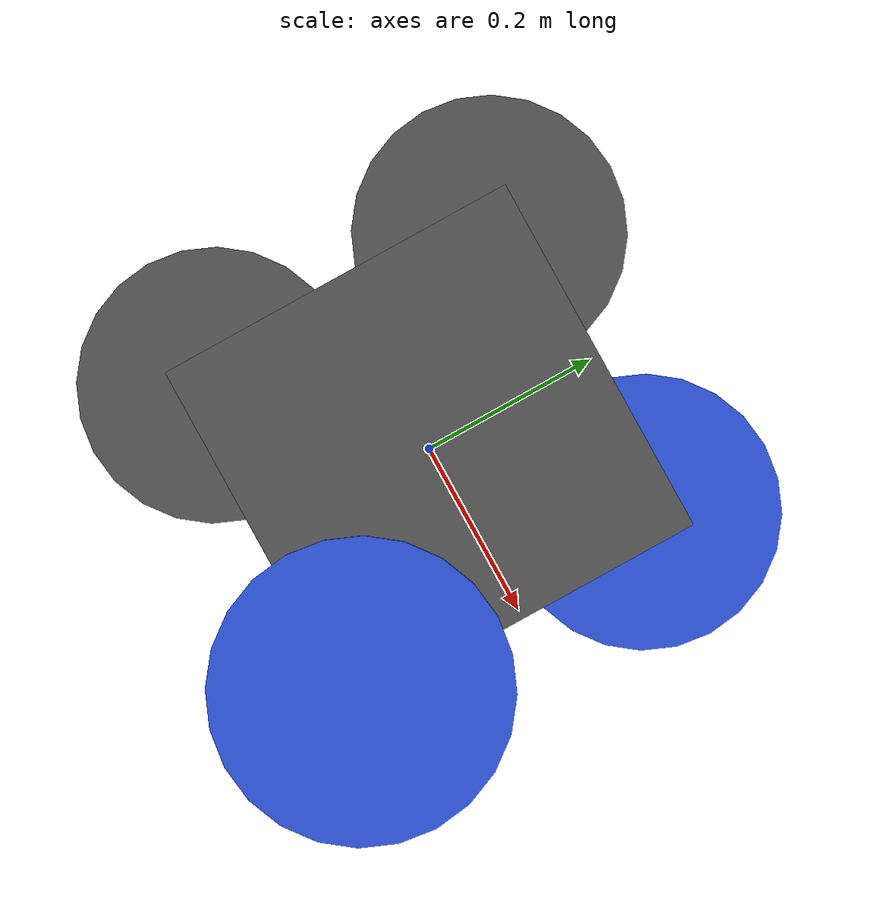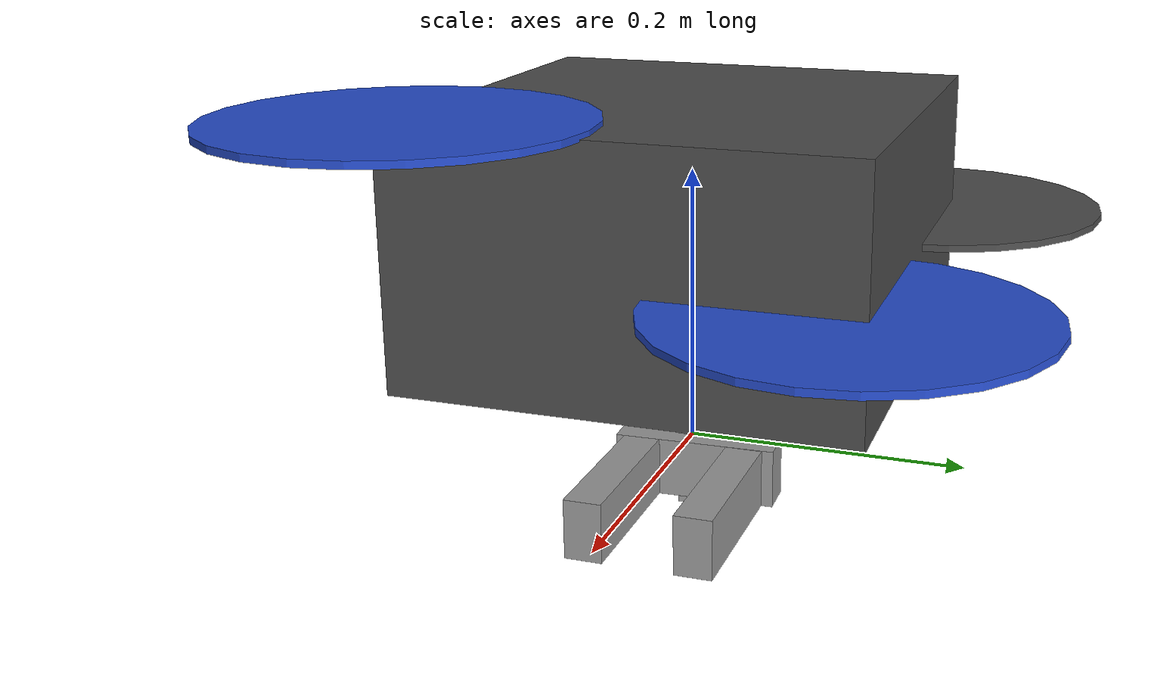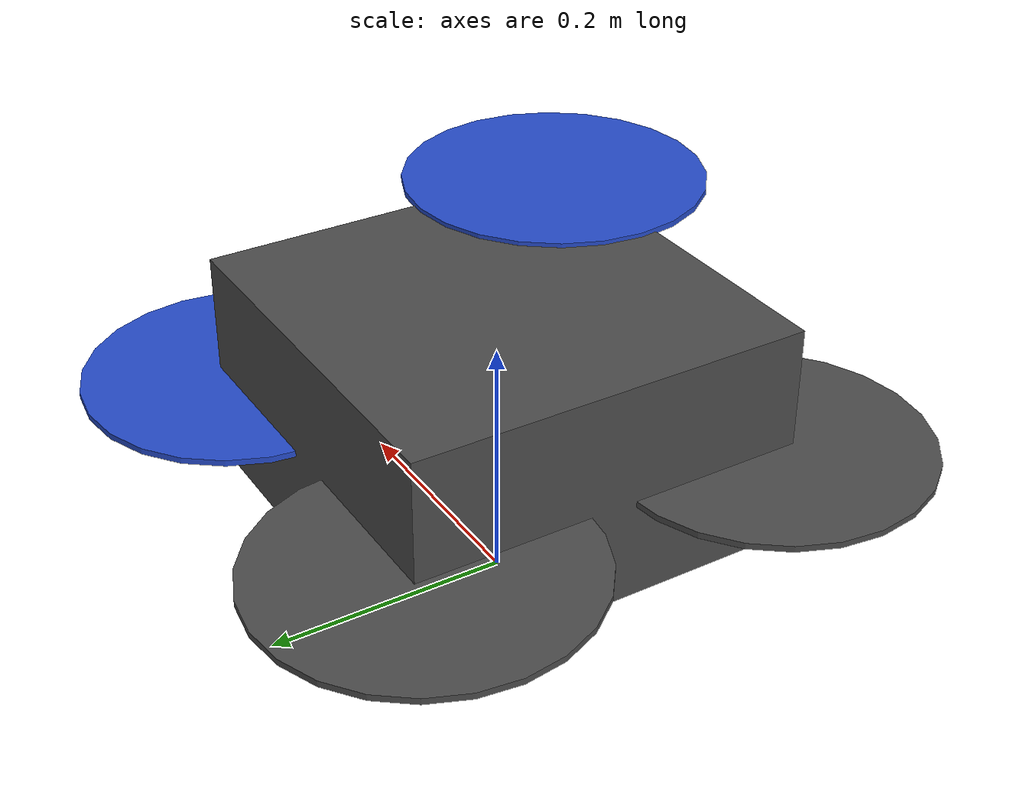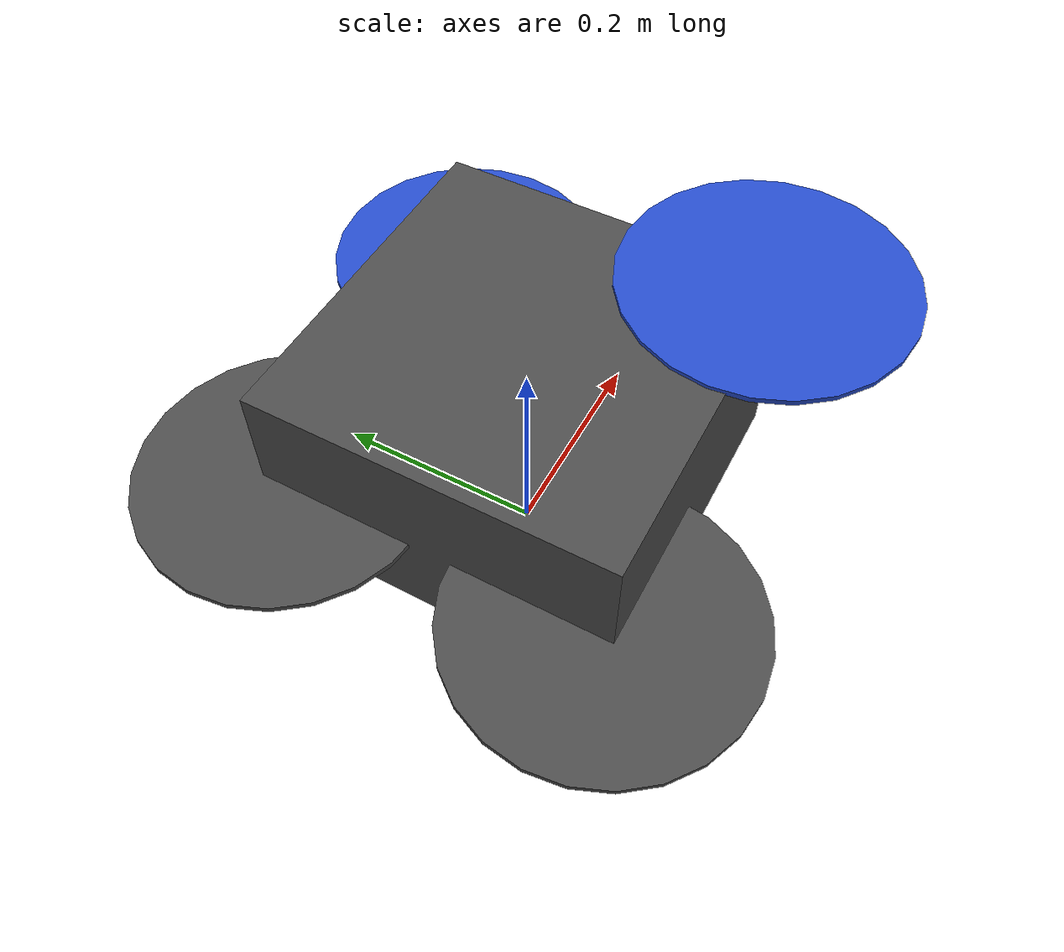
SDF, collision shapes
<?xml version='1.0'?>
<sdf version='1.5'>
  <model name='solo'>
    <!-- Solo body -->
<!-- Solo body -->
    <link name='base_link'>
      <pose>0 0 0.1 0 0 0</pose>
      <inertial>
        <pose>0 0 0 0 0 0</pose>
        <mass>1.47</mass>
        <inertia>
          <ixx>0.011</ixx>
          <ixy>0</ixy>
          <ixz>0</ixz>
          <iyy>0.015</iyy>
          <iyz>0</iyz>
          <izz>0.021</izz>
        </inertia>
      </inertial>
      <collision name='base_link_inertia_collision'>
        <pose>0 0 0.06 0 0 0</pose>
        <geometry>
          <box>
            <size>0.32 0.32 0.18</size>
          </box>
        </geometry>
        <surface>
          <contact>
            <ode>
              <min_depth>0.001</min_depth>
              <max_vel>0</max_vel>
            </ode>
          </contact>
          <friction>
            <ode/>
          </friction>
        </surface>
      </collision>
      <visual name='base_link_inertia_visual'>
        <pose>0 0 0.1 0 0 0</pose>
        <geometry>
          <mesh>
            <scale>1 1 1</scale>
            <uri>model://solo/meshes/solo.stl</uri>
          </mesh>
        </geometry>
        <material>
          <script>
            <name>Gazebo/DarkGrey</name>
            <uri>file://media/materials/scripts/gazebo.material</uri>
          </script>
        </material>
      </visual>
      <gravity>1</gravity>
      <velocity_decay/>
      <self_collide>0</self_collide>
    </link>
    <link name='imu_link'>
      <pose>0 0 0.1 0 0 0</pose>
      <inertial>
        <pose>0 0 0 0 0 0</pose>
        <mass>0.015</mass>
        <inertia>
          <ixx>1e-05</ixx>
          <ixy>0</ixy>
          <ixz>0</ixz>
          <iyy>1e-05</iyy>
          <iyz>0</iyz>
          <izz>1e-05</izz>
        </inertia>
      </inertial>
    </link>
    <joint name='imu_joint' type='revolute'>
      <child>imu_link</child>
      <parent>base_link</parent>
      <axis>
        <xyz>1 0 0</xyz>
        <limit>
          <lower>0</lower>
          <upper>0</upper>
          <effort>0</effort>
          <velocity>0</velocity>
        </limit>
        <dynamics>
          <spring_reference>0</spring_reference>
          <spring_stiffness>0</spring_stiffness>
        </dynamics>
        <use_parent_model_frame>1</use_parent_model_frame>
      </axis>
    </joint>
    <link name='rotor_0'>
      <pose>0.14745 -0.14525 0.151 0 0 0</pose>
      <inertial>
        <pose>0 0 0 0 0 0</pose>
        <mass>0.005</mass>
        <inertia>
          <ixx>9.75e-07</ixx>
          <ixy>0</ixy>
          <ixz>0</ixz>
          <iyy>0.000273104</iyy>
          <iyz>0</iyz>
          <izz>0.000274004</izz>
        </inertia>
      </inertial>
      <collision name='rotor_0_collision'>
        <pose>0 0 0.1 0 0 0</pose>
        <geometry>
          <cylinder>
            <length>0.005</length>
            <radius>0.128</radius>
          </cylinder>
        </geometry>
        <surface>
          <contact>
            <ode/>
          </contact>
          <friction>
            <ode/>
          </friction>
        </surface>
      </collision>
      <visual name='rotor_0_visual'>
        <pose>-0.14745 -0.14525 -0.151 0 0 0</pose>
        <geometry>
          <mesh>
            <scale>1 1 1</scale>
            <uri>model://solo/meshes/solo_prop_ccw.stl</uri>
          </mesh>
        </geometry>
        <material>
          <script>
            <name>Gazebo/Blue</name>
            <uri>file://media/materials/scripts/gazebo.material</uri>
          </script>
        </material>
      </visual>
      <gravity>1</gravity>
      <velocity_decay/>
      <self_collide>0</self_collide>
    </link>
    <joint name='rotor_0_joint' type='revolute'>
      <child>rotor_0</child>
      <parent>base_link</parent>
      <axis>
        <xyz>0 0 1</xyz>
        <limit>
          <lower>-1e+16</lower>
          <upper>1e+16</upper>
        </limit>
        <dynamics>
          <spring_reference>0</spring_reference>
          <spring_stiffness>0</spring_stiffness>
        </dynamics>
        <use_parent_model_frame>1</use_parent_model_frame>
      </axis>
    </joint>
    <link name='rotor_1'>
      <pose>-0.14745 0.14525 0.151 0 0 0</pose>
      <inertial>
        <pose>0 0 0 0 0 0</pose>
        <mass>0.005</mass>
        <inertia>
          <ixx>9.75e-07</ixx>
          <ixy>0</ixy>
          <ixz>0</ixz>
          <iyy>0.000273104</iyy>
          <iyz>0</iyz>
          <izz>0.000274004</izz>
        </inertia>
      </inertial>
      <collision name='rotor_1_collision'>
        <pose>0 0 0 0 0 0</pose>
        <geometry>
          <cylinder>
            <length>0.005</length>
            <radius>0.128</radius>
          </cylinder>
        </geometry>
        <surface>
          <contact>
            <ode/>
          </contact>
          <friction>
            <ode/>
          </friction>
        </surface>
      </collision>
      <visual name='rotor_1_visual'>
        <pose>-0.14745 -0.14525 -0.151 0 0 0</pose>
        <geometry>
          <mesh>
            <scale>1 1 1</scale>
            <uri>model://solo/meshes/solo_prop_ccw.stl</uri>
          </mesh>
        </geometry>
        <material>
          <script>
            <name>Gazebo/DarkGrey</name>
            <uri>file://media/materials/scripts/gazebo.material</uri>
          </script>
        </material>
      </visual>
      <gravity>1</gravity>
      <velocity_decay/>
      <self_collide>0</self_collide>
    </link>
    <joint name='rotor_1_joint' type='revolute'>
      <child>rotor_1</child>
      <parent>base_link</parent>
      <axis>
        <xyz>0 0 1</xyz>
        <limit>
          <lower>-1e+16</lower>
          <upper>1e+16</upper>
        </limit>
        <dynamics>
          <spring_reference>0</spring_reference>
          <spring_stiffness>0</spring_stiffness>
        </dynamics>
        <use_parent_model_frame>1</use_parent_model_frame>
      </axis>
    </joint>
    <link name='rotor_2'>
      <pose>0.14745 0.14525 0.151 0 0 0</pose>
      <inertial>
        <pose>0 0 0 0 0 0</pose>
        <mass>0.005</mass>
        <inertia>
          <ixx>9.75e-07</ixx>
          <ixy>0</ixy>
          <ixz>0</ixz>
          <iyy>0.000273104</iyy>
          <iyz>0</iyz>
          <izz>0.000274004</izz>
        </inertia>
      </inertial>
      <collision name='rotor_2_collision'>
        <pose>0 0 0 0 0 0</pose>
        <geometry>
          <cylinder>
            <length>0.005</length>
            <radius>0.128</radius>
          </cylinder>
        </geometry>
        <surface>
          <contact>
            <ode/>
          </contact>
          <friction>
            <ode/>
          </friction>
        </surface>
      </collision>
      <visual name='rotor_2_visual'>
        <pose>-0.14745 0.14525 -0.151 0 0 0</pose>
        <geometry>
          <mesh>
            <scale>1 1 1</scale>
            <uri>model://solo/meshes/solo_prop_cw.stl</uri>
          </mesh>
        </geometry>
        <material>
          <script>
            <name>Gazebo/Blue</name>
            <uri>file://media/materials/scripts/gazebo.material</uri>
          </script>
        </material>
      </visual>
      <gravity>1</gravity>
      <velocity_decay/>
      <self_collide>0</self_collide>
    </link>
    <joint name='rotor_2_joint' type='revolute'>
      <child>rotor_2</child>
      <parent>base_link</parent>
      <axis>
        <xyz>0 0 1</xyz>
        <limit>
          <lower>-1e+16</lower>
          <upper>1e+16</upper>
        </limit>
        <dynamics>
          <spring_reference>0</spring_reference>
          <spring_stiffness>0</spring_stiffness>
        </dynamics>
        <use_parent_model_frame>1</use_parent_model_frame>
      </axis>
    </joint>
    <link name='rotor_3'>
      <pose>-0.14745 -0.14525 0.151 0 0 0</pose>
      <inertial>
        <pose>0 0 0 0 0 0</pose>
        <mass>0.005</mass>
        <inertia>
          <ixx>9.75e-07</ixx>
          <ixy>0</ixy>
          <ixz>0</ixz>
          <iyy>0.000273104</iyy>
          <iyz>0</iyz>
          <izz>0.000274004</izz>
        </inertia>
      </inertial>
      <collision name='rotor_3_collision'>
        <pose>0 0 0 0 0 0</pose>
        <geometry>
          <cylinder>
            <length>0.005</length>
            <radius>0.128</radius>
          </cylinder>
        </geometry>
        <surface>
          <contact>
            <ode/>
          </contact>
          <friction>
            <ode/>
          </friction>
        </surface>
      </collision>
      <visual name='rotor_3_visual'>
        <pose>-0.14745 0.14525 -0.151 0 0 0</pose>
        <geometry>
          <mesh>
            <scale>1 1 1</scale>
            <uri>model://solo/meshes/solo_prop_cw.stl</uri>
          </mesh>
        </geometry>
        <material>
          <script>
            <name>Gazebo/DarkGrey</name>
            <uri>file://media/materials/scripts/gazebo.material</uri>
          </script>
        </material>
      </visual>
      <gravity>1</gravity>
      <velocity_decay/>
      <self_collide>0</self_collide>
    </link>
    <joint name='rotor_3_joint' type='revolute'>
      <child>rotor_3</child>
      <parent>base_link</parent>
      <axis>
        <xyz>0 0 1</xyz>
        <limit>
          <lower>-1e+16</lower>
          <upper>1e+16</upper>
        </limit>
        <dynamics>
          <spring_reference>0</spring_reference>
          <spring_stiffness>0</spring_stiffness>
        </dynamics>
        <use_parent_model_frame>1</use_parent_model_frame>
      </axis>
    </joint>
    <plugin name='rosbag' filename='libgazebo_multirotor_base_plugin.so'>
      <robotNamespace></robotNamespace>
      <linkName>base_link</linkName>
      <rotorVelocitySlowdownSim>10</rotorVelocitySlowdownSim>
    </plugin>
    <plugin name='front_right_motor_model' filename='libgazebo_motor_model.so'>
      <robotNamespace></robotNamespace>
      <jointName>rotor_0_joint</jointName>
      <linkName>rotor_0</linkName>
      <turningDirection>ccw</turningDirection>
      <timeConstantUp>0.0125</timeConstantUp>
      <timeConstantDown>0.025</timeConstantDown>
      <maxRotVelocity>1500</maxRotVelocity>
      <motorConstant>8.54858e-06</motorConstant>
      <momentConstant>0.06</momentConstant>
      <commandSubTopic>/gazebo/command/motor_speed</commandSubTopic>
      <motorNumber>0</motorNumber>
      <rotorDragCoefficient>0.000806428</rotorDragCoefficient>
      <rollingMomentCoefficient>1e-06</rollingMomentCoefficient>
      <motorSpeedPubTopic>/motor_speed/0</motorSpeedPubTopic>
      <rotorVelocitySlowdownSim>10</rotorVelocitySlowdownSim>
    </plugin>
    <plugin name='back_left_motor_model' filename='libgazebo_motor_model.so'>
      <robotNamespace></robotNamespace>
      <jointName>rotor_1_joint</jointName>
      <linkName>rotor_1</linkName>
      <turningDirection>ccw</turningDirection>
      <timeConstantUp>0.0125</timeConstantUp>
      <timeConstantDown>0.025</timeConstantDown>
      <maxRotVelocity>1500</maxRotVelocity>
      <motorConstant>8.54858e-06</motorConstant>
      <momentConstant>0.06</momentConstant>
      <commandSubTopic>/gazebo/command/motor_speed</commandSubTopic>
      <motorNumber>1</motorNumber>
      <rotorDragCoefficient>0.000806428</rotorDragCoefficient>
      <rollingMomentCoefficient>1e-06</rollingMomentCoefficient>
      <motorSpeedPubTopic>/motor_speed/1</motorSpeedPubTopic>
      <rotorVelocitySlowdownSim>10</rotorVelocitySlowdownSim>
    </plugin>
    <plugin name='front_left_motor_model' filename='libgazebo_motor_model.so'>
      <robotNamespace></robotNamespace>
      <jointName>rotor_2_joint</jointName>
      <linkName>rotor_2</linkName>
      <turningDirection>cw</turningDirection>
      <timeConstantUp>0.0125</timeConstantUp>
      <timeConstantDown>0.025</timeConstantDown>
      <maxRotVelocity>1500</maxRotVelocity>
      <motorConstant>8.54858e-06</motorConstant>
      <momentConstant>0.06</momentConstant>
      <commandSubTopic>/gazebo/command/motor_speed</commandSubTopic>
      <motorNumber>2</motorNumber>
      <rotorDragCoefficient>0.000806428</rotorDragCoefficient>
      <rollingMomentCoefficient>1e-06</rollingMomentCoefficient>
      <motorSpeedPubTopic>/motor_speed/2</motorSpeedPubTopic>
      <rotorVelocitySlowdownSim>10</rotorVelocitySlowdownSim>
    </plugin>
    <plugin name='back_right_motor_model' filename='libgazebo_motor_model.so'>
      <robotNamespace></robotNamespace>
      <jointName>rotor_3_joint</jointName>
      <linkName>rotor_3</linkName>
      <turningDirection>cw</turningDirection>
      <timeConstantUp>0.0125</timeConstantUp>
      <timeConstantDown>0.025</timeConstantDown>
      <maxRotVelocity>1500</maxRotVelocity>
      <motorConstant>8.54858e-06</motorConstant>
      <momentConstant>0.06</momentConstant>
      <commandSubTopic>/gazebo/command/motor_speed</commandSubTopic>
      <motorNumber>3</motorNumber>
      <rotorDragCoefficient>0.000806428</rotorDragCoefficient>
      <rollingMomentCoefficient>1e-06</rollingMomentCoefficient>
      <motorSpeedPubTopic>/motor_speed/3</motorSpeedPubTopic>
      <rotorVelocitySlowdownSim>10</rotorVelocitySlowdownSim>
    </plugin>
    <plugin name="gps_plugin" filename="libgazebo_gps_plugin.so">
      <robotNamespace></robotNamespace>
      <gpsNoise>true</gpsNoise>
    </plugin>
    <plugin name='magnetometer_plugin' filename='libgazebo_magnetometer_plugin.so'>
      <robotNamespace/>
      <pubRate>20</pubRate>
      <noiseDensity>0.0004</noiseDensity>
      <randomWalk>6.4e-06</randomWalk>
      <biasCorrelationTime>600</biasCorrelationTime>
      <magTopic>/mag</magTopic>
    </plugin>
    <plugin name='barometer_plugin' filename='libgazebo_barometer_plugin.so'>
      <robotNamespace/>
      <pubRate>10</pubRate>
      <baroTopic>/baro</baroTopic>
    </plugin>
    <plugin name='mavlink_interface' filename='libgazebo_mavlink_interface.so'>
      <robotNamespace/>
      <imuSubTopic>/imu</imuSubTopic>
      <gpsSubTopic>/gps</gpsSubTopic>
      <magSubTopic>/mag</magSubTopic>
      <baroSubTopic>/baro</baroSubTopic>
      <mavlink_addr>INADDR_ANY</mavlink_addr>
      <mavlink_udp_port>14560</mavlink_udp_port>
      <serialEnabled>false</serialEnabled>
      <serialDevice>/dev/ttyACM0</serialDevice>
      <baudRate>921600</baudRate>
      <qgc_addr>INADDR_ANY</qgc_addr>
      <qgc_udp_port>14550</qgc_udp_port>
      <hil_mode>false</hil_mode>
      <hil_state_level>false</hil_state_level>
      <enable_lockstep>true</enable_lockstep>
      <use_tcp>true</use_tcp>
      <motorSpeedCommandPubTopic>/gazebo/command/motor_speed</motorSpeedCommandPubTopic>
      <control_channels>
        <channel name='rotor1'>
          <input_index>0</input_index>
          <input_offset>0</input_offset>
          <input_scaling>1200</input_scaling>
          <zero_position_disarmed>0</zero_position_disarmed>
          <zero_position_armed>100</zero_position_armed>
          <joint_control_type>velocity</joint_control_type>
        </channel>
        <channel name='rotor2'>
          <input_index>1</input_index>
          <input_offset>0</input_offset>
          <input_scaling>1200</input_scaling>
          <zero_position_disarmed>0</zero_position_disarmed>
          <zero_position_armed>100</zero_position_armed>
          <joint_control_type>velocity</joint_control_type>
        </channel>
        <channel name='rotor3'>
          <input_index>2</input_index>
          <input_offset>0</input_offset>
          <input_scaling>1200</input_scaling>
          <zero_position_disarmed>0</zero_position_disarmed>
          <zero_position_armed>100</zero_position_armed>
          <joint_control_type>velocity</joint_control_type>
        </channel>
        <channel name='rotor4'>
          <input_index>3</input_index>
          <input_offset>0</input_offset>
          <input_scaling>1200</input_scaling>
          <zero_position_disarmed>0</zero_position_disarmed>
          <zero_position_armed>100</zero_position_armed>
          <joint_control_type>velocity</joint_control_type>
        </channel>
      </control_channels>
    </plugin>
    <static>0</static>
    <plugin name='gazebo_imu_plugin' filename='libgazebo_imu_plugin.so'>
      <robotNamespace></robotNamespace>
      <linkName>imu_link</linkName>
      <imuTopic>/imu</imuTopic>
      <gyroscopeNoiseDensity>0.0003394</gyroscopeNoiseDensity>
      <gyroscopeRandomWalk>3.8785e-05</gyroscopeRandomWalk>
      <gyroscopeBiasCorrelationTime>1000.0</gyroscopeBiasCorrelationTime>
      <gyroscopeTurnOnBiasSigma>0.0087</gyroscopeTurnOnBiasSigma>
      <accelerometerNoiseDensity>0.004</accelerometerNoiseDensity>
      <accelerometerRandomWalk>0.006</accelerometerRandomWalk>
      <accelerometerBiasCorrelationTime>300.0</accelerometerBiasCorrelationTime>
      <accelerometerTurnOnBiasSigma>0.196</accelerometerTurnOnBiasSigma>
    </plugin>

    <link name='link_0'>
      <inertial>
        <mass>0.00014475</mass>
        <inertia>
          <ixx>3e-08</ixx>
          <ixy>0</ixy>
          <ixz>0</ixz>
          <iyy>2e-07</iyy>
          <iyz>0</iyz>
          <izz>1.8e-07</izz>
        </inertia>
        <pose frame=''>0 0 0 0 -0 0</pose>
      </inertial>
      <pose frame=''>0.062609 0.040038 -0.028053 0 -0 0</pose>
      <gravity>1</gravity>
      <self_collide>1</self_collide>
      <kinematic>0</kinematic>
      <enable_wind>0</enable_wind>
      <visual name='visual'>
        <pose frame=''>0 0 0 0 -0 0</pose>
        <geometry>
          <box>
            <size>0.120741 0.027391 0.043667</size>
          </box>
        </geometry>
        <material>
          <lighting>1</lighting>
          <script>
            <uri>file://media/materials/scripts/gazebo.material</uri>
            <name>Gazebo/Grey</name>
          </script>
          <shader type='pixel'>
            <normal_map>__default__</normal_map>
          </shader>
          <emissive>0 0 0 1</emissive>
        </material>
        <transparency>0</transparency>
        <cast_shadows>1</cast_shadows>
      </visual>
      <collision name='collision'>
        <laser_retro>0</laser_retro>
        <max_contacts>10</max_contacts>
        <pose frame=''>0 0 0 0 -0 0</pose>
        <geometry>
          <box>
            <size>0.120741 0.027391 0.043667</size>
          </box>
        </geometry>
        <surface>
          <friction>
            <ode>
              <mu>1</mu>
              <mu2>1</mu2>
              <fdir1>0 0 0</fdir1>
              <slip1>0</slip1>
              <slip2>0</slip2>
            </ode>
            <torsional>
              <coefficient>1</coefficient>
              <patch_radius>0</patch_radius>
              <surface_radius>0</surface_radius>
              <use_patch_radius>1</use_patch_radius>
              <ode>
                <slip>0</slip>
              </ode>
            </torsional>
          </friction>
          <bounce>
            <restitution_coefficient>0</restitution_coefficient>
            <threshold>1e+06</threshold>
          </bounce>
          <contact>
            <collide_without_contact>0</collide_without_contact>
            <collide_without_contact_bitmask>1</collide_without_contact_bitmask>
            <collide_bitmask>1</collide_bitmask>
            <ode>
              <soft_cfm>0</soft_cfm>
              <soft_erp>0.2</soft_erp>
              <kp>1e+13</kp>
              <kd>1</kd>
              <max_vel>0.01</max_vel>
              <min_depth>0</min_depth>
            </ode>
            <bullet>
              <split_impulse>1</split_impulse>
              <split_impulse_penetration_threshold>-0.01</split_impulse_penetration_threshold>
              <soft_cfm>0</soft_cfm>
              <soft_erp>0.2</soft_erp>
              <kp>1e+13</kp>
              <kd>1</kd>
            </bullet>
          </contact>
        </surface>
      </collision>
    </link>
    <link name='link_0_clone'>
      <inertial>
        <mass>0.00014475</mass>
        <inertia>
          <ixx>3e-08</ixx>
          <ixy>0</ixy>
          <ixz>0</ixz>
          <iyy>2e-07</iyy>
          <iyz>0</iyz>
          <izz>1.8e-07</izz>
        </inertia>
        <pose frame=''>0 0 0 0 -0 0</pose>
      </inertial>
      <pose frame=''>0.062609 -0.038679 -0.028053 0 -0 0</pose>
      <gravity>1</gravity>
      <self_collide>1</self_collide>
      <kinematic>0</kinematic>
      <enable_wind>0</enable_wind>
      <visual name='visual'>
        <pose frame=''>0 0 0 0 -0 0</pose>
        <geometry>
          <box>
            <size>0.120741 0.027391 0.043667</size>
          </box>
        </geometry>
        <material>
          <lighting>1</lighting>
          <script>
            <uri>file://media/materials/scripts/gazebo.material</uri>
            <name>Gazebo/Grey</name>
          </script>
          <shader type='pixel'>
            <normal_map>__default__</normal_map>
          </shader>
          <emissive>0 0 0 1</emissive>
        </material>
        <transparency>0</transparency>
        <cast_shadows>1</cast_shadows>
      </visual>
      <collision name='collision'>
        <laser_retro>0</laser_retro>
        <max_contacts>10</max_contacts>
        <pose frame=''>0 0 0 0 -0 0</pose>
        <geometry>
          <box>
            <size>0.120741 0.027391 0.043667</size>
          </box>
        </geometry>
        <surface>
          <friction>
            <ode>
              <mu>1</mu>
              <mu2>1</mu2>
              <fdir1>0 0 0</fdir1>
              <slip1>0</slip1>
              <slip2>0</slip2>
            </ode>
            <torsional>
              <coefficient>1</coefficient>
              <patch_radius>0</patch_radius>
              <surface_radius>0</surface_radius>
              <use_patch_radius>1</use_patch_radius>
              <ode>
                <slip>0</slip>
              </ode>
            </torsional>
          </friction>
          <bounce>
            <restitution_coefficient>0</restitution_coefficient>
            <threshold>1e+06</threshold>
          </bounce>
          <contact>
            <collide_without_contact>0</collide_without_contact>
            <collide_without_contact_bitmask>1</collide_without_contact_bitmask>
            <collide_bitmask>1</collide_bitmask>
            <ode>
              <soft_cfm>0</soft_cfm>
              <soft_erp>0.2</soft_erp>
              <kp>1e+13</kp>
              <kd>1</kd>
              <max_vel>0.01</max_vel>
              <min_depth>0</min_depth>
            </ode>
            <bullet>
              <split_impulse>1</split_impulse>
              <split_impulse_penetration_threshold>-0.01</split_impulse_penetration_threshold>
              <soft_cfm>0</soft_cfm>
              <soft_erp>0.2</soft_erp>
              <kp>1e+13</kp>
              <kd>1</kd>
            </bullet>
          </contact>
        </surface>
      </collision>
    </link>
    <link name='link_0_clone_0_clone'>
      <inertial>
        <mass>0.00014475</mass>
        <inertia>
          <ixx>3e-08</ixx>
          <ixy>0</ixy>
          <ixz>0</ixz>
          <iyy>2e-07</iyy>
          <iyz>0</iyz>
          <izz>1.8e-07</izz>
        </inertia>
        <pose frame=''>0 0 0 0 -0 0</pose>
      </inertial>
      <pose frame=''>-0.034598 -0.001291 -0.00192 0 1.5543 0</pose>
      <gravity>1</gravity>
      <self_collide>0</self_collide>
      <kinematic>0</kinematic>
      <enable_wind>0</enable_wind>
      <visual name='visual'>
        <pose frame=''>0 0 0 0 -0 0</pose>
        <geometry>
          <box>
            <size>0.120741 0.027391 0.043667</size>
          </box>
        </geometry>
        <material>
          <lighting>1</lighting>
          <script>
            <uri>file://media/materials/scripts/gazebo.material</uri>
            <name>Gazebo/Grey</name>
          </script>
          <shader type='pixel'>
            <normal_map>__default__</normal_map>
          </shader>
          <emissive>0 0 0 1</emissive>
        </material>
        <transparency>0</transparency>
        <cast_shadows>1</cast_shadows>
      </visual>
      <collision name='collision'>
        <laser_retro>0</laser_retro>
        <max_contacts>10</max_contacts>
        <pose frame=''>0 0 0 0 -0 0</pose>
        <geometry>
          <box>
            <size>0.120741 0.027391 0.043667</size>
          </box>
        </geometry>
        <surface>
          <friction>
            <ode>
              <mu>1</mu>
              <mu2>1</mu2>
              <fdir1>0 0 0</fdir1>
              <slip1>0</slip1>
              <slip2>0</slip2>
            </ode>
            <torsional>
              <coefficient>1</coefficient>
              <patch_radius>0</patch_radius>
              <surface_radius>0</surface_radius>
              <use_patch_radius>1</use_patch_radius>
              <ode>
                <slip>0</slip>
              </ode>
            </torsional>
          </friction>
          <bounce>
            <restitution_coefficient>0</restitution_coefficient>
            <threshold>1e+06</threshold>
          </bounce>
          <contact>
            <collide_without_contact>0</collide_without_contact>
            <collide_without_contact_bitmask>1</collide_without_contact_bitmask>
            <collide_bitmask>1</collide_bitmask>
            <ode>
              <soft_cfm>0</soft_cfm>
              <soft_erp>0.2</soft_erp>
              <kp>1e+13</kp>
              <kd>1</kd>
              <max_vel>0.01</max_vel>
              <min_depth>0</min_depth>
            </ode>
            <bullet>
              <split_impulse>1</split_impulse>
              <split_impulse_penetration_threshold>-0.01</split_impulse_penetration_threshold>
              <soft_cfm>0</soft_cfm>
              <soft_erp>0.2</soft_erp>
              <kp>1e+13</kp>
              <kd>1</kd>
            </bullet>
          </contact>
        </surface>
      </collision>
    </link>
    <link name='link_0_clone_0_clone_clone'>
      <inertial>
        <mass>0.00014475</mass>
        <inertia>
          <ixx>3e-08</ixx>
          <ixy>0</ixy>
          <ixz>0</ixz>
          <iyy>2e-07</iyy>
          <iyz>0</iyz>
          <izz>1.8e-07</izz>
        </inertia>
        <pose frame=''>0 0 0 0 -0 0</pose>
      </inertial>
      <pose frame=''>-0.079722 -0.001291 0.086079 0 1.5543 0</pose>
      <gravity>1</gravity>
      <self_collide>1</self_collide>
      <kinematic>0</kinematic>
      <enable_wind>0</enable_wind>
      <visual name='visual'>
        <pose frame=''>0 0 0 0 -0 0</pose>
        <geometry>
          <box>
            <size>0.120741 0.027391 0.043667</size>
          </box>
        </geometry>
        <material>
          <lighting>1</lighting>
          <script>
            <uri>file://media/materials/scripts/gazebo.material</uri>
            <name>Gazebo/Grey</name>
          </script>
          <shader type='pixel'>
            <normal_map>__default__</normal_map>
          </shader>
          <emissive>0 0 0 1</emissive>
        </material>
        <transparency>0</transparency>
        <cast_shadows>1</cast_shadows>
      </visual>
      <collision name='collision'>
        <laser_retro>0</laser_retro>
        <max_contacts>10</max_contacts>
        <pose frame=''>0 0 0 0 -0 0</pose>
        <geometry>
          <box>
            <size>0.120741 0.027391 0.043667</size>
          </box>
        </geometry>
        <surface>
          <friction>
            <ode>
              <mu>1</mu>
              <mu2>1</mu2>
              <fdir1>0 0 0</fdir1>
              <slip1>0</slip1>
              <slip2>0</slip2>
            </ode>
            <torsional>
              <coefficient>1</coefficient>
              <patch_radius>0</patch_radius>
              <surface_radius>0</surface_radius>
              <use_patch_radius>1</use_patch_radius>
              <ode>
                <slip>0</slip>
              </ode>
            </torsional>
          </friction>
          <bounce>
            <restitution_coefficient>0</restitution_coefficient>
            <threshold>1e+06</threshold>
          </bounce>
          <contact>
            <collide_without_contact>0</collide_without_contact>
            <collide_without_contact_bitmask>1</collide_without_contact_bitmask>
            <collide_bitmask>1</collide_bitmask>
            <ode>
              <soft_cfm>0</soft_cfm>
              <soft_erp>0.2</soft_erp>
              <kp>1e+13</kp>
              <kd>1</kd>
              <max_vel>0.01</max_vel>
              <min_depth>0</min_depth>
            </ode>
            <bullet>
              <split_impulse>1</split_impulse>
              <split_impulse_penetration_threshold>-0.01</split_impulse_penetration_threshold>
              <soft_cfm>0</soft_cfm>
              <soft_erp>0.2</soft_erp>
              <kp>1e+13</kp>
              <kd>1</kd>
            </bullet>
          </contact>
        </surface>
      </collision>
    </link>
    <link name='link_0_clone_clone'>
      <inertial>
        <mass>0.00014475</mass>
        <inertia>
          <ixx>3e-08</ixx>
          <ixy>0</ixy>
          <ixz>0</ixz>
          <iyy>2e-07</iyy>
          <iyz>0</iyz>
          <izz>1.8e-07</izz>
        </inertia>
        <pose frame=''>0 0 0 0 -0 0</pose>
      </inertial>
      <pose frame=''>-0.0109 0.001226 -0.028053 0 -0 1.60105</pose>
      <gravity>1</gravity>
      <self_collide>1</self_collide>
      <kinematic>0</kinematic>
      <enable_wind>0</enable_wind>
      <visual name='visual'>
        <pose frame=''>0 0 0 0 -0 0</pose>
        <geometry>
          <box>
            <size>0.120741 0.027391 0.043667</size>
          </box>
        </geometry>
        <material>
          <lighting>1</lighting>
          <script>
            <uri>file://media/materials/scripts/gazebo.material</uri>
            <name>Gazebo/Grey</name>
          </script>
          <shader type='pixel'>
            <normal_map>__default__</normal_map>
          </shader>
          <emissive>0 0 0 1</emissive>
        </material>
        <transparency>0</transparency>
        <cast_shadows>1</cast_shadows>
      </visual>
      <collision name='collision'>
        <laser_retro>0</laser_retro>
        <max_contacts>10</max_contacts>
        <pose frame=''>0 0 0 0 -0 0</pose>
        <geometry>
          <box>
            <size>0.120741 0.027391 0.043667</size>
          </box>
        </geometry>
        <surface>
          <friction>
            <ode>
              <mu>1</mu>
              <mu2>1</mu2>
              <fdir1>0 0 0</fdir1>
              <slip1>0</slip1>
              <slip2>0</slip2>
            </ode>
            <torsional>
              <coefficient>1</coefficient>
              <patch_radius>0</patch_radius>
              <surface_radius>0</surface_radius>
              <use_patch_radius>1</use_patch_radius>
              <ode>
                <slip>0</slip>
              </ode>
            </torsional>
          </friction>
          <bounce>
            <restitution_coefficient>0</restitution_coefficient>
            <threshold>1e+06</threshold>
          </bounce>
          <contact>
            <collide_without_contact>0</collide_without_contact>
            <collide_without_contact_bitmask>1</collide_without_contact_bitmask>
            <collide_bitmask>1</collide_bitmask>
            <ode>
              <soft_cfm>0</soft_cfm>
              <soft_erp>0.2</soft_erp>
              <kp>1e+13</kp>
              <kd>1</kd>
              <max_vel>0.01</max_vel>
              <min_depth>0</min_depth>
            </ode>
            <bullet>
              <split_impulse>1</split_impulse>
              <split_impulse_penetration_threshold>-0.01</split_impulse_penetration_threshold>
              <soft_cfm>0</soft_cfm>
              <soft_erp>0.2</soft_erp>
              <kp>1e+13</kp>
              <kd>1</kd>
            </bullet>
          </contact>
        </surface>
      </collision>
    </link>
    <joint name='end_joint' type='revolute'>
      <parent>link_0_clone_0_clone</parent>
      <child>link_0_clone_clone</child>
      <pose frame=''>0 0 0 0 -0 0</pose>
      <axis>
        <xyz>1 0 0</xyz>
        <use_parent_model_frame>0</use_parent_model_frame>
        <limit>
          <lower>-1.79769e+308</lower>
          <upper>1.79769e+308</upper>
          <effort>-1</effort>
          <velocity>-1</velocity>
        </limit>
        <dynamics>
          <spring_reference>0</spring_reference>
          <spring_stiffness>0</spring_stiffness>
          <damping>0</damping>
          <friction>0</friction>
        </dynamics>
      </axis>
    </joint>
    <joint name='link_0_clone_0_clone_clone_JOINT_3' type='revolute'>
      <parent>link_0_clone_0_clone_clone</parent>
      <child>link_0_clone_0_clone</child>
      <pose frame=''>-0.04 0 0 0 -0 0</pose>
      <axis>
        <xyz>0 1 0</xyz>
        <use_parent_model_frame>0</use_parent_model_frame>
        <limit>
          <lower>-1.79769e+308</lower>
          <upper>1.79769e+308</upper>
          <effort>-1</effort>
          <velocity>-1</velocity>
        </limit>
        <dynamics>
          <spring_reference>0</spring_reference>
          <spring_stiffness>0</spring_stiffness>
        </dynamics>
      </axis>
      <physics>
        <ode>
          <limit>
            <cfm>0</cfm>
            <erp>0.2</erp>
          </limit>
          <suspension>
            <cfm>0</cfm>
            <erp>0.2</erp>
          </suspension>
        </ode>
      </physics>
    </joint>
    <joint name='link_0_clone_clone_JOINT_0' type='prismatic'>
      <parent>link_0_clone_clone</parent>
      <child>link_0</child>
      <pose frame=''>0 0 0 0 0 -0.03</pose>
      <axis>
        <xyz>0 -1 0</xyz>
        <use_parent_model_frame>0</use_parent_model_frame>
        <limit>
          <lower>0</lower>
          <upper>0.03</upper>
          <effort>-1</effort>
          <velocity>-1</velocity>
        </limit>
        <dynamics>
          <spring_reference>0</spring_reference>
          <spring_stiffness>0</spring_stiffness>
        </dynamics>
      </axis>
    </joint>
    <joint name='link_0_clone_clone_JOINT_1' type='prismatic'>
      <parent>link_0_clone_clone</parent>
      <child>link_0_clone</child>
      <pose frame=''>0 0 0 0 -0 0</pose>
      <axis>
        <xyz>0 1 0</xyz>
        <use_parent_model_frame>0</use_parent_model_frame>
        <limit>
          <lower>-0</lower>
          <upper>0.03</upper>
          <effort>-1</effort>
          <velocity>-1</velocity>
        </limit>
        <dynamics>
          <spring_reference>0</spring_reference>
          <spring_stiffness>0</spring_stiffness>
        </dynamics>
      </axis>
    </joint>
    <joint name='Joint_arm_uav' type='fixed'>
      <parent>base_link</parent>
      <child>link_0_clone_0_clone_clone</child>
    </joint>
  </model>
</sdf>
